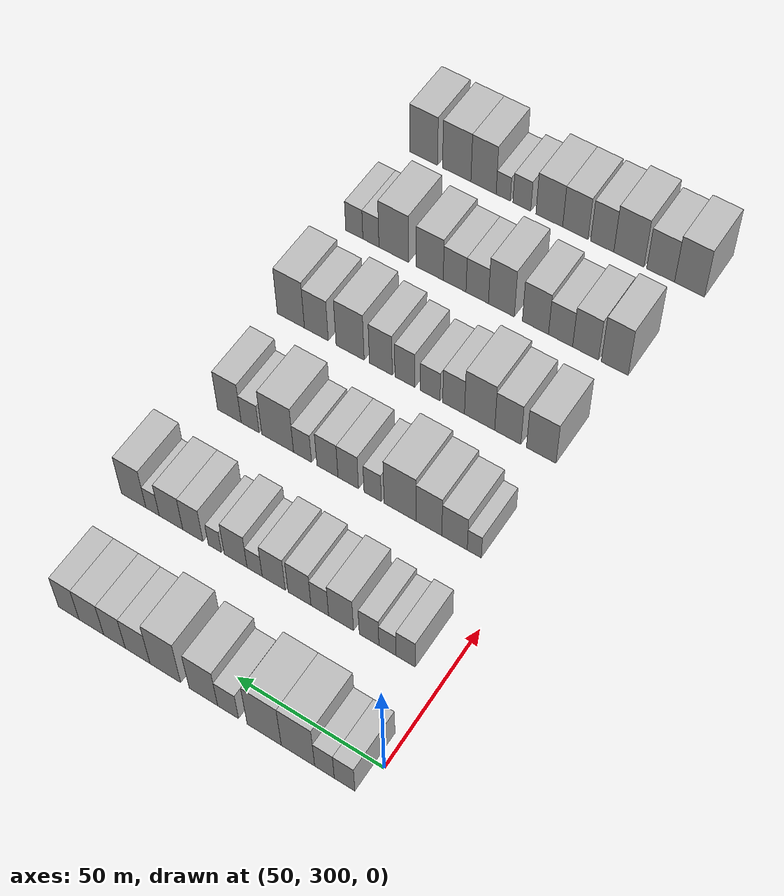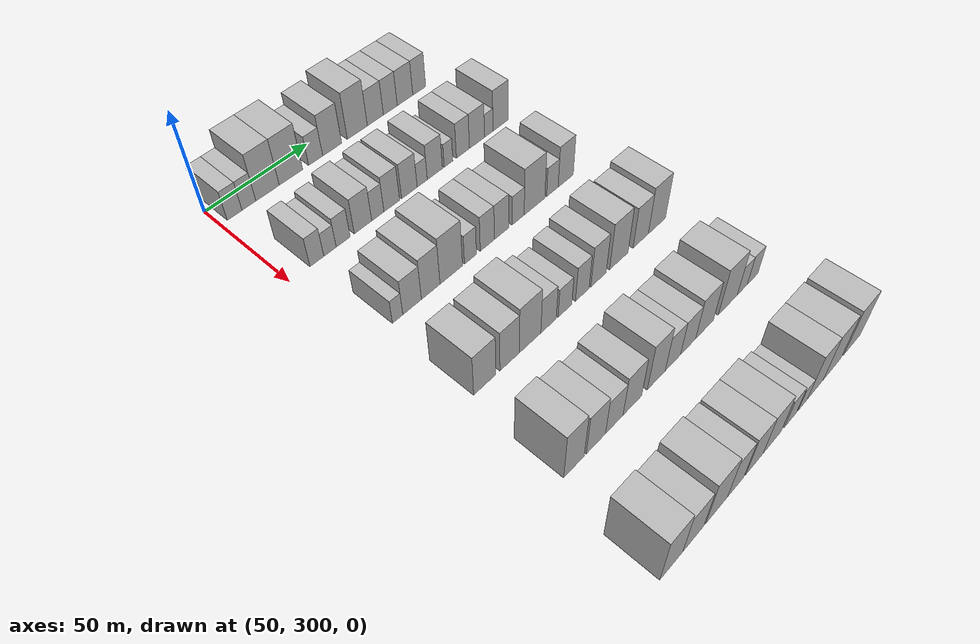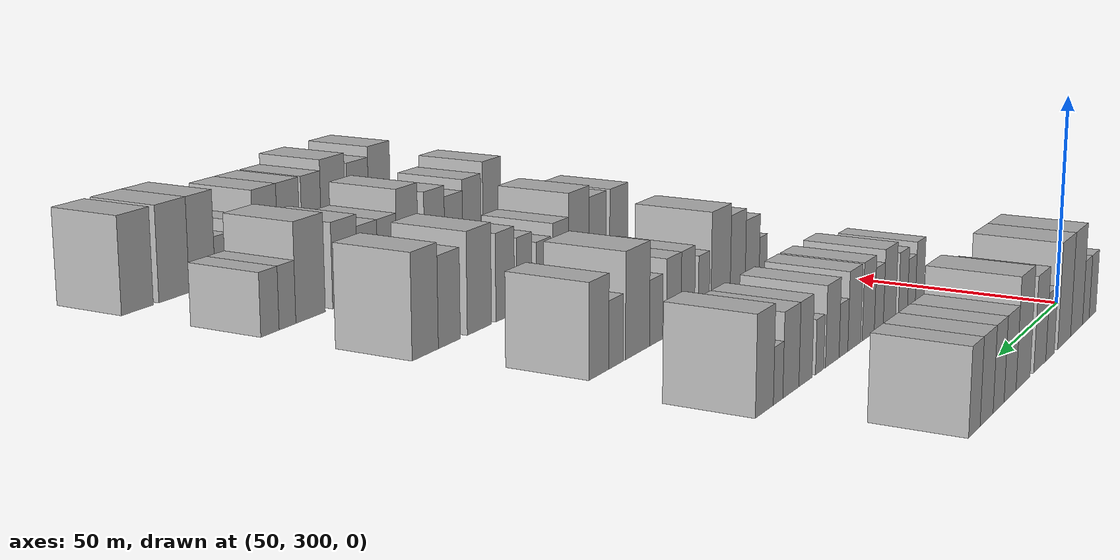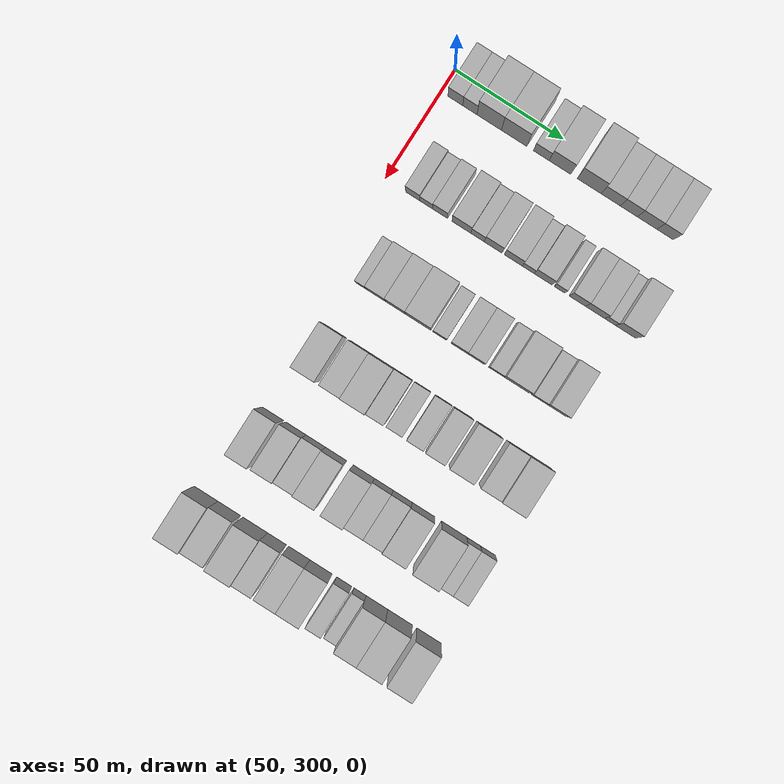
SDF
<sdf version="1.6">
 <world name="default">
  <model name="building_100">
   <static>1</static>
   <pose>50.0000 306.5376 0 0.000000 0.000000 0.000000</pose>
   <link name="link">
    <pose>0 0 7.50 0 0 0</pose>
    <collision name="collision"><geometry><box><size>20.0000 6.8069 15.0000</size></box></geometry></collision>
    <visual name="visual">
     <cast_shadows>0</cast_shadows>
     <geometry><box><size>20.0000 6.8069 15.0000</size></box></geometry>
     <material>
      <script>
       <uri>model://HANNAS_wall/materials/scripts</uri>
       <uri>model://HANNAS_wall/materials/textures</uri>
       <name>vrc/HANNAS_wall</name>
      </script>
     </material>
    </visual>
   </link>
  </model>
  <model name="building_101">
   <static>1</static>
   <pose>50.0000 313.2041 0 0.000000 0.000000 0.000000</pose>
   <link name="link">
    <pose>0 0 7.50 0 0 0</pose>
    <collision name="collision"><geometry><box><size>20.0000 6.5261 15.0000</size></box></geometry></collision>
    <visual name="visual">
     <cast_shadows>0</cast_shadows>
     <geometry><box><size>20.0000 6.5261 15.0000</size></box></geometry>
     <material>
      <script>
       <uri>model://HANNAS_wall/materials/scripts</uri>
       <uri>model://HANNAS_wall/materials/textures</uri>
       <name>vrc/HANNAS_wall</name>
      </script>
     </material>
    </visual>
   </link>
  </model>
  <model name="building_102">
   <static>1</static>
   <pose>50.0000 322.0785 0 0.000000 0.000000 0.000000</pose>
   <link name="link">
    <pose>0 0 12.00 0 0 0</pose>
    <collision name="collision"><geometry><box><size>20.0000 11.2226 24.0000</size></box></geometry></collision>
    <visual name="visual">
     <cast_shadows>0</cast_shadows>
     <geometry><box><size>20.0000 11.2226 24.0000</size></box></geometry>
     <material>
      <script>
       <uri>model://HANNAS_wall/materials/scripts</uri>
       <uri>model://HANNAS_wall/materials/textures</uri>
       <name>vrc/HANNAS_wall</name>
      </script>
     </material>
    </visual>
   </link>
  </model>
  <model name="building_103">
   <static>1</static>
   <pose>50.0000 333.5019 0 0.000000 0.000000 0.000000</pose>
   <link name="link">
    <pose>0 0 12.00 0 0 0</pose>
    <collision name="collision"><geometry><box><size>20.0000 11.6243 24.0000</size></box></geometry></collision>
    <visual name="visual">
     <cast_shadows>0</cast_shadows>
     <geometry><box><size>20.0000 11.6243 24.0000</size></box></geometry>
     <material>
      <script>
       <uri>model://HANNAS_wall/materials/scripts</uri>
       <uri>model://HANNAS_wall/materials/textures</uri>
       <name>vrc/HANNAS_wall</name>
      </script>
     </material>
    </visual>
   </link>
  </model>
  <model name="building_104">
   <static>1</static>
   <pose>50.0000 345.9176 0 0.000000 0.000000 0.000000</pose>
   <link name="link">
    <pose>0 0 7.50 0 0 0</pose>
    <collision name="collision"><geometry><box><size>20.0000 7.2070 15.0000</size></box></geometry></collision>
    <visual name="visual">
     <cast_shadows>0</cast_shadows>
     <geometry><box><size>20.0000 7.2070 15.0000</size></box></geometry>
     <material>
      <script>
       <uri>model://HANNAS_wall/materials/scripts</uri>
       <uri>model://HANNAS_wall/materials/textures</uri>
       <name>vrc/HANNAS_wall</name>
      </script>
     </material>
    </visual>
   </link>
  </model>
  <model name="building_105">
   <static>1</static>
   <pose>50.0000 354.4840 0 0.000000 0.000000 0.000000</pose>
   <link name="link">
    <pose>0 0 10.50 0 0 0</pose>
    <collision name="collision"><geometry><box><size>20.0000 9.9259 21.0000</size></box></geometry></collision>
    <visual name="visual">
     <cast_shadows>0</cast_shadows>
     <geometry><box><size>20.0000 9.9259 21.0000</size></box></geometry>
     <material>
      <script>
       <uri>model://HANNAS_wall/materials/scripts</uri>
       <uri>model://HANNAS_wall/materials/textures</uri>
       <name>vrc/HANNAS_wall</name>
      </script>
     </material>
    </visual>
   </link>
  </model>
  <model name="building_106">
   <static>1</static>
   <pose>50.0000 367.8768 0 0.000000 0.000000 0.000000</pose>
   <link name="link">
    <pose>0 0 12.00 0 0 0</pose>
    <collision name="collision"><geometry><box><size>20.0000 10.8597 24.0000</size></box></geometry></collision>
    <visual name="visual">
     <cast_shadows>0</cast_shadows>
     <geometry><box><size>20.0000 10.8597 24.0000</size></box></geometry>
     <material>
      <script>
       <uri>model://HANNAS_wall/materials/scripts</uri>
       <uri>model://HANNAS_wall/materials/textures</uri>
       <name>vrc/HANNAS_wall</name>
      </script>
     </material>
    </visual>
   </link>
  </model>
  <model name="building_107">
   <static>1</static>
   <pose>50.0000 377.7399 0 0.000000 0.000000 0.000000</pose>
   <link name="link">
    <pose>0 0 9.00 0 0 0</pose>
    <collision name="collision"><geometry><box><size>20.0000 8.8666 18.0000</size></box></geometry></collision>
    <visual name="visual">
     <cast_shadows>0</cast_shadows>
     <geometry><box><size>20.0000 8.8666 18.0000</size></box></geometry>
     <material>
      <script>
       <uri>model://HANNAS_wall/materials/scripts</uri>
       <uri>model://HANNAS_wall/materials/textures</uri>
       <name>vrc/HANNAS_wall</name>
      </script>
     </material>
    </visual>
   </link>
  </model>
  <model name="building_108">
   <static>1</static>
   <pose>50.0000 386.0869 0 0.000000 0.000000 0.000000</pose>
   <link name="link">
    <pose>0 0 9.00 0 0 0</pose>
    <collision name="collision"><geometry><box><size>20.0000 7.8273 18.0000</size></box></geometry></collision>
    <visual name="visual">
     <cast_shadows>0</cast_shadows>
     <geometry><box><size>20.0000 7.8273 18.0000</size></box></geometry>
     <material>
      <script>
       <uri>model://HANNAS_wall/materials/scripts</uri>
       <uri>model://HANNAS_wall/materials/textures</uri>
       <name>vrc/HANNAS_wall</name>
      </script>
     </material>
    </visual>
   </link>
  </model>
  <model name="building_109">
   <static>1</static>
   <pose>50.0000 394.4726 0 0.000000 0.000000 0.000000</pose>
   <link name="link">
    <pose>0 0 9.00 0 0 0</pose>
    <collision name="collision"><geometry><box><size>20.0000 8.9442 18.0000</size></box></geometry></collision>
    <visual name="visual">
     <cast_shadows>0</cast_shadows>
     <geometry><box><size>20.0000 8.9442 18.0000</size></box></geometry>
     <material>
      <script>
       <uri>model://HANNAS_wall/materials/scripts</uri>
       <uri>model://HANNAS_wall/materials/textures</uri>
       <name>vrc/HANNAS_wall</name>
      </script>
     </material>
    </visual>
   </link>
  </model>
  <model name="building_110">
   <static>1</static>
   <pose>50.0000 402.7370 0 0.000000 0.000000 0.000000</pose>
   <link name="link">
    <pose>0 0 9.00 0 0 0</pose>
    <collision name="collision"><geometry><box><size>20.0000 7.5845 18.0000</size></box></geometry></collision>
    <visual name="visual">
     <cast_shadows>0</cast_shadows>
     <geometry><box><size>20.0000 7.5845 18.0000</size></box></geometry>
     <material>
      <script>
       <uri>model://HANNAS_wall/materials/scripts</uri>
       <uri>model://HANNAS_wall/materials/textures</uri>
       <name>vrc/HANNAS_wall</name>
      </script>
     </material>
    </visual>
   </link>
  </model>
  <model name="building_247">
   <static>1</static>
   <pose>90.0000 312.5411 0 0.000000 0.000000 0.000000</pose>
   <link name="link">
    <pose>0 0 7.50 0 0 0</pose>
    <collision name="collision"><geometry><box><size>20.0000 6.5039 15.0000</size></box></geometry></collision>
    <visual name="visual">
     <cast_shadows>0</cast_shadows>
     <geometry><box><size>20.0000 6.5039 15.0000</size></box></geometry>
     <material>
      <script>
       <uri>model://HANNAS_wall/materials/scripts</uri>
       <uri>model://HANNAS_wall/materials/textures</uri>
       <name>vrc/HANNAS_wall</name>
      </script>
     </material>
    </visual>
   </link>
  </model>
  <model name="building_248">
   <static>1</static>
   <pose>90.0000 318.7344 0 0.000000 0.000000 0.000000</pose>
   <link name="link">
    <pose>0 0 6.00 0 0 0</pose>
    <collision name="collision"><geometry><box><size>20.0000 5.8826 12.0000</size></box></geometry></collision>
    <visual name="visual">
     <cast_shadows>0</cast_shadows>
     <geometry><box><size>20.0000 5.8826 12.0000</size></box></geometry>
     <material>
      <script>
       <uri>model://HANNAS_wall/materials/scripts</uri>
       <uri>model://HANNAS_wall/materials/textures</uri>
       <name>vrc/HANNAS_wall</name>
      </script>
     </material>
    </visual>
   </link>
  </model>
  <model name="building_249">
   <static>1</static>
   <pose>90.0000 325.0450 0 0.000000 0.000000 0.000000</pose>
   <link name="link">
    <pose>0 0 7.50 0 0 0</pose>
    <collision name="collision"><geometry><box><size>20.0000 6.7387 15.0000</size></box></geometry></collision>
    <visual name="visual">
     <cast_shadows>0</cast_shadows>
     <geometry><box><size>20.0000 6.7387 15.0000</size></box></geometry>
     <material>
      <script>
       <uri>model://HANNAS_wall/materials/scripts</uri>
       <uri>model://HANNAS_wall/materials/textures</uri>
       <name>vrc/HANNAS_wall</name>
      </script>
     </material>
    </visual>
   </link>
  </model>
  <model name="building_250">
   <static>1</static>
   <pose>90.0000 334.7540 0 0.000000 0.000000 0.000000</pose>
   <link name="link">
    <pose>0 0 9.00 0 0 0</pose>
    <collision name="collision"><geometry><box><size>20.0000 8.6794 18.0000</size></box></geometry></collision>
    <visual name="visual">
     <cast_shadows>0</cast_shadows>
     <geometry><box><size>20.0000 8.6794 18.0000</size></box></geometry>
     <material>
      <script>
       <uri>model://HANNAS_wall/materials/scripts</uri>
       <uri>model://HANNAS_wall/materials/textures</uri>
       <name>vrc/HANNAS_wall</name>
      </script>
     </material>
    </visual>
   </link>
  </model>
  <model name="building_251">
   <static>1</static>
   <pose>90.0000 342.1892 0 0.000000 0.000000 0.000000</pose>
   <link name="link">
    <pose>0 0 7.50 0 0 0</pose>
    <collision name="collision"><geometry><box><size>20.0000 6.1909 15.0000</size></box></geometry></collision>
    <visual name="visual">
     <cast_shadows>0</cast_shadows>
     <geometry><box><size>20.0000 6.1909 15.0000</size></box></geometry>
     <material>
      <script>
       <uri>model://HANNAS_wall/materials/scripts</uri>
       <uri>model://HANNAS_wall/materials/textures</uri>
       <name>vrc/HANNAS_wall</name>
      </script>
     </material>
    </visual>
   </link>
  </model>
  <model name="building_252">
   <static>1</static>
   <pose>90.0000 349.3246 0 0.000000 0.000000 0.000000</pose>
   <link name="link">
    <pose>0 0 9.00 0 0 0</pose>
    <collision name="collision"><geometry><box><size>20.0000 8.0799 18.0000</size></box></geometry></collision>
    <visual name="visual">
     <cast_shadows>0</cast_shadows>
     <geometry><box><size>20.0000 8.0799 18.0000</size></box></geometry>
     <material>
      <script>
       <uri>model://HANNAS_wall/materials/scripts</uri>
       <uri>model://HANNAS_wall/materials/textures</uri>
       <name>vrc/HANNAS_wall</name>
      </script>
     </material>
    </visual>
   </link>
  </model>
  <model name="building_253">
   <static>1</static>
   <pose>90.0000 358.4822 0 0.000000 0.000000 0.000000</pose>
   <link name="link">
    <pose>0 0 9.00 0 0 0</pose>
    <collision name="collision"><geometry><box><size>20.0000 8.2353 18.0000</size></box></geometry></collision>
    <visual name="visual">
     <cast_shadows>0</cast_shadows>
     <geometry><box><size>20.0000 8.2353 18.0000</size></box></geometry>
     <material>
      <script>
       <uri>model://HANNAS_wall/materials/scripts</uri>
       <uri>model://HANNAS_wall/materials/textures</uri>
       <name>vrc/HANNAS_wall</name>
      </script>
     </material>
    </visual>
   </link>
  </model>
  <model name="building_254">
   <static>1</static>
   <pose>90.0000 365.3271 0 0.000000 0.000000 0.000000</pose>
   <link name="link">
    <pose>0 0 6.00 0 0 0</pose>
    <collision name="collision"><geometry><box><size>20.0000 5.4544 12.0000</size></box></geometry></collision>
    <visual name="visual">
     <cast_shadows>0</cast_shadows>
     <geometry><box><size>20.0000 5.4544 12.0000</size></box></geometry>
     <material>
      <script>
       <uri>model://HANNAS_wall/materials/scripts</uri>
       <uri>model://HANNAS_wall/materials/textures</uri>
       <name>vrc/HANNAS_wall</name>
      </script>
     </material>
    </visual>
   </link>
  </model>
  <model name="building_255">
   <static>1</static>
   <pose>90.0000 372.1898 0 0.000000 0.000000 0.000000</pose>
   <link name="link">
    <pose>0 0 9.00 0 0 0</pose>
    <collision name="collision"><geometry><box><size>20.0000 8.2711 18.0000</size></box></geometry></collision>
    <visual name="visual">
     <cast_shadows>0</cast_shadows>
     <geometry><box><size>20.0000 8.2711 18.0000</size></box></geometry>
     <material>
      <script>
       <uri>model://HANNAS_wall/materials/scripts</uri>
       <uri>model://HANNAS_wall/materials/textures</uri>
       <name>vrc/HANNAS_wall</name>
      </script>
     </material>
    </visual>
   </link>
  </model>
  <model name="building_256">
   <static>1</static>
   <pose>90.0000 379.7319 0 0.000000 0.000000 0.000000</pose>
   <link name="link">
    <pose>0 0 6.00 0 0 0</pose>
    <collision name="collision"><geometry><box><size>20.0000 4.8130 12.0000</size></box></geometry></collision>
    <visual name="visual">
     <cast_shadows>0</cast_shadows>
     <geometry><box><size>20.0000 4.8130 12.0000</size></box></geometry>
     <material>
      <script>
       <uri>model://HANNAS_wall/materials/scripts</uri>
       <uri>model://HANNAS_wall/materials/textures</uri>
       <name>vrc/HANNAS_wall</name>
      </script>
     </material>
    </visual>
   </link>
  </model>
  <model name="building_257">
   <static>1</static>
   <pose>90.0000 387.8607 0 0.000000 0.000000 0.000000</pose>
   <link name="link">
    <pose>0 0 9.00 0 0 0</pose>
    <collision name="collision"><geometry><box><size>20.0000 7.4447 18.0000</size></box></geometry></collision>
    <visual name="visual">
     <cast_shadows>0</cast_shadows>
     <geometry><box><size>20.0000 7.4447 18.0000</size></box></geometry>
     <material>
      <script>
       <uri>model://HANNAS_wall/materials/scripts</uri>
       <uri>model://HANNAS_wall/materials/textures</uri>
       <name>vrc/HANNAS_wall</name>
      </script>
     </material>
    </visual>
   </link>
  </model>
  <model name="building_258">
   <static>1</static>
   <pose>90.0000 395.9584 0 0.000000 0.000000 0.000000</pose>
   <link name="link">
    <pose>0 0 9.00 0 0 0</pose>
    <collision name="collision"><geometry><box><size>20.0000 8.7507 18.0000</size></box></geometry></collision>
    <visual name="visual">
     <cast_shadows>0</cast_shadows>
     <geometry><box><size>20.0000 8.7507 18.0000</size></box></geometry>
     <material>
      <script>
       <uri>model://HANNAS_wall/materials/scripts</uri>
       <uri>model://HANNAS_wall/materials/textures</uri>
       <name>vrc/HANNAS_wall</name>
      </script>
     </material>
    </visual>
   </link>
  </model>
  <model name="building_259">
   <static>1</static>
   <pose>90.0000 402.8392 0 0.000000 0.000000 0.000000</pose>
   <link name="link">
    <pose>0 0 6.00 0 0 0</pose>
    <collision name="collision"><geometry><box><size>20.0000 5.0107 12.0000</size></box></geometry></collision>
    <visual name="visual">
     <cast_shadows>0</cast_shadows>
     <geometry><box><size>20.0000 5.0107 12.0000</size></box></geometry>
     <material>
      <script>
       <uri>model://HANNAS_wall/materials/scripts</uri>
       <uri>model://HANNAS_wall/materials/textures</uri>
       <name>vrc/HANNAS_wall</name>
      </script>
     </material>
    </visual>
   </link>
  </model>
  <model name="building_260">
   <static>1</static>
   <pose>90.0000 409.9484 0 0.000000 0.000000 0.000000</pose>
   <link name="link">
    <pose>0 0 10.50 0 0 0</pose>
    <collision name="collision"><geometry><box><size>20.0000 9.2077 21.0000</size></box></geometry></collision>
    <visual name="visual">
     <cast_shadows>0</cast_shadows>
     <geometry><box><size>20.0000 9.2077 21.0000</size></box></geometry>
     <material>
      <script>
       <uri>model://HANNAS_wall/materials/scripts</uri>
       <uri>model://HANNAS_wall/materials/textures</uri>
       <name>vrc/HANNAS_wall</name>
      </script>
     </material>
    </visual>
   </link>
  </model>
  <model name="building_380">
   <static>1</static>
   <pose>130.0000 314.3895 0 0.000000 0.000000 0.000000</pose>
   <link name="link">
    <pose>0 0 6.00 0 0 0</pose>
    <collision name="collision"><geometry><box><size>20.0000 4.8801 12.0000</size></box></geometry></collision>
    <visual name="visual">
     <cast_shadows>0</cast_shadows>
     <geometry><box><size>20.0000 4.8801 12.0000</size></box></geometry>
     <material>
      <script>
       <uri>model://HANNAS_wall/materials/scripts</uri>
       <uri>model://HANNAS_wall/materials/textures</uri>
       <name>vrc/HANNAS_wall</name>
      </script>
     </material>
    </visual>
   </link>
  </model>
  <model name="building_381">
   <static>1</static>
   <pose>130.0000 321.2710 0 0.000000 0.000000 0.000000</pose>
   <link name="link">
    <pose>0 0 9.00 0 0 0</pose>
    <collision name="collision"><geometry><box><size>20.0000 8.8830 18.0000</size></box></geometry></collision>
    <visual name="visual">
     <cast_shadows>0</cast_shadows>
     <geometry><box><size>20.0000 8.8830 18.0000</size></box></geometry>
     <material>
      <script>
       <uri>model://HANNAS_wall/materials/scripts</uri>
       <uri>model://HANNAS_wall/materials/textures</uri>
       <name>vrc/HANNAS_wall</name>
      </script>
     </material>
    </visual>
   </link>
  </model>
  <model name="building_382">
   <static>1</static>
   <pose>130.0000 330.2864 0 0.000000 0.000000 0.000000</pose>
   <link name="link">
    <pose>0 0 10.50 0 0 0</pose>
    <collision name="collision"><geometry><box><size>20.0000 9.1477 21.0000</size></box></geometry></collision>
    <visual name="visual">
     <cast_shadows>0</cast_shadows>
     <geometry><box><size>20.0000 9.1477 21.0000</size></box></geometry>
     <material>
      <script>
       <uri>model://HANNAS_wall/materials/scripts</uri>
       <uri>model://HANNAS_wall/materials/textures</uri>
       <name>vrc/HANNAS_wall</name>
      </script>
     </material>
    </visual>
   </link>
  </model>
  <model name="building_383">
   <static>1</static>
   <pose>130.0000 340.5444 0 0.000000 0.000000 0.000000</pose>
   <link name="link">
    <pose>0 0 12.00 0 0 0</pose>
    <collision name="collision"><geometry><box><size>20.0000 11.3683 24.0000</size></box></geometry></collision>
    <visual name="visual">
     <cast_shadows>0</cast_shadows>
     <geometry><box><size>20.0000 11.3683 24.0000</size></box></geometry>
     <material>
      <script>
       <uri>model://HANNAS_wall/materials/scripts</uri>
       <uri>model://HANNAS_wall/materials/textures</uri>
       <name>vrc/HANNAS_wall</name>
      </script>
     </material>
    </visual>
   </link>
  </model>
  <model name="building_384">
   <static>1</static>
   <pose>130.0000 350.3355 0 0.000000 0.000000 0.000000</pose>
   <link name="link">
    <pose>0 0 7.50 0 0 0</pose>
    <collision name="collision"><geometry><box><size>20.0000 6.2139 15.0000</size></box></geometry></collision>
    <visual name="visual">
     <cast_shadows>0</cast_shadows>
     <geometry><box><size>20.0000 6.2139 15.0000</size></box></geometry>
     <material>
      <script>
       <uri>model://HANNAS_wall/materials/scripts</uri>
       <uri>model://HANNAS_wall/materials/textures</uri>
       <name>vrc/HANNAS_wall</name>
      </script>
     </material>
    </visual>
   </link>
  </model>
  <model name="building_385">
   <static>1</static>
   <pose>130.0000 359.1834 0 0.000000 0.000000 0.000000</pose>
   <link name="link">
    <pose>0 0 9.00 0 0 0</pose>
    <collision name="collision"><geometry><box><size>20.0000 7.4818 18.0000</size></box></geometry></collision>
    <visual name="visual">
     <cast_shadows>0</cast_shadows>
     <geometry><box><size>20.0000 7.4818 18.0000</size></box></geometry>
     <material>
      <script>
       <uri>model://HANNAS_wall/materials/scripts</uri>
       <uri>model://HANNAS_wall/materials/textures</uri>
       <name>vrc/HANNAS_wall</name>
      </script>
     </material>
    </visual>
   </link>
  </model>
  <model name="building_386">
   <static>1</static>
   <pose>130.0000 366.7861 0 0.000000 0.000000 0.000000</pose>
   <link name="link">
    <pose>0 0 9.00 0 0 0</pose>
    <collision name="collision"><geometry><box><size>20.0000 7.7238 18.0000</size></box></geometry></collision>
    <visual name="visual">
     <cast_shadows>0</cast_shadows>
     <geometry><box><size>20.0000 7.7238 18.0000</size></box></geometry>
     <material>
      <script>
       <uri>model://HANNAS_wall/materials/scripts</uri>
       <uri>model://HANNAS_wall/materials/textures</uri>
       <name>vrc/HANNAS_wall</name>
      </script>
     </material>
    </visual>
   </link>
  </model>
  <model name="building_387">
   <static>1</static>
   <pose>130.0000 375.9779 0 0.000000 0.000000 0.000000</pose>
   <link name="link">
    <pose>0 0 7.50 0 0 0</pose>
    <collision name="collision"><geometry><box><size>20.0000 6.6596 15.0000</size></box></geometry></collision>
    <visual name="visual">
     <cast_shadows>0</cast_shadows>
     <geometry><box><size>20.0000 6.6596 15.0000</size></box></geometry>
     <material>
      <script>
       <uri>model://HANNAS_wall/materials/scripts</uri>
       <uri>model://HANNAS_wall/materials/textures</uri>
       <name>vrc/HANNAS_wall</name>
      </script>
     </material>
    </visual>
   </link>
  </model>
  <model name="building_388">
   <static>1</static>
   <pose>130.0000 385.2452 0 0.000000 0.000000 0.000000</pose>
   <link name="link">
    <pose>0 0 12.00 0 0 0</pose>
    <collision name="collision"><geometry><box><size>20.0000 11.8752 24.0000</size></box></geometry></collision>
    <visual name="visual">
     <cast_shadows>0</cast_shadows>
     <geometry><box><size>20.0000 11.8752 24.0000</size></box></geometry>
     <material>
      <script>
       <uri>model://HANNAS_wall/materials/scripts</uri>
       <uri>model://HANNAS_wall/materials/textures</uri>
       <name>vrc/HANNAS_wall</name>
      </script>
     </material>
    </visual>
   </link>
  </model>
  <model name="building_389">
   <static>1</static>
   <pose>130.0000 395.5736 0 0.000000 0.000000 0.000000</pose>
   <link name="link">
    <pose>0 0 7.50 0 0 0</pose>
    <collision name="collision"><geometry><box><size>20.0000 6.7816 15.0000</size></box></geometry></collision>
    <visual name="visual">
     <cast_shadows>0</cast_shadows>
     <geometry><box><size>20.0000 6.7816 15.0000</size></box></geometry>
     <material>
      <script>
       <uri>model://HANNAS_wall/materials/scripts</uri>
       <uri>model://HANNAS_wall/materials/textures</uri>
       <name>vrc/HANNAS_wall</name>
      </script>
     </material>
    </visual>
   </link>
  </model>
  <model name="building_390">
   <static>1</static>
   <pose>130.0000 403.4716 0 0.000000 0.000000 0.000000</pose>
   <link name="link">
    <pose>0 0 10.50 0 0 0</pose>
    <collision name="collision"><geometry><box><size>20.0000 9.0143 21.0000</size></box></geometry></collision>
    <visual name="visual">
     <cast_shadows>0</cast_shadows>
     <geometry><box><size>20.0000 9.0143 21.0000</size></box></geometry>
     <material>
      <script>
       <uri>model://HANNAS_wall/materials/scripts</uri>
       <uri>model://HANNAS_wall/materials/textures</uri>
       <name>vrc/HANNAS_wall</name>
      </script>
     </material>
    </visual>
   </link>
  </model>
  <model name="building_518">
   <static>1</static>
   <pose>170.0000 315.1786 0 0.000000 0.000000 0.000000</pose>
   <link name="link">
    <pose>0 0 10.50 0 0 0</pose>
    <collision name="collision"><geometry><box><size>20.0000 10.4764 21.0000</size></box></geometry></collision>
    <visual name="visual">
     <cast_shadows>0</cast_shadows>
     <geometry><box><size>20.0000 10.4764 21.0000</size></box></geometry>
     <material>
      <script>
       <uri>model://HANNAS_wall/materials/scripts</uri>
       <uri>model://HANNAS_wall/materials/textures</uri>
       <name>vrc/HANNAS_wall</name>
      </script>
     </material>
    </visual>
   </link>
  </model>
  <model name="building_519">
   <static>1</static>
   <pose>170.0000 327.1107 0 0.000000 0.000000 0.000000</pose>
   <link name="link">
    <pose>0 0 10.50 0 0 0</pose>
    <collision name="collision"><geometry><box><size>20.0000 9.3878 21.0000</size></box></geometry></collision>
    <visual name="visual">
     <cast_shadows>0</cast_shadows>
     <geometry><box><size>20.0000 9.3878 21.0000</size></box></geometry>
     <material>
      <script>
       <uri>model://HANNAS_wall/materials/scripts</uri>
       <uri>model://HANNAS_wall/materials/textures</uri>
       <name>vrc/HANNAS_wall</name>
      </script>
     </material>
    </visual>
   </link>
  </model>
  <model name="building_520">
   <static>1</static>
   <pose>170.0000 337.2861 0 0.000000 0.000000 0.000000</pose>
   <link name="link">
    <pose>0 0 12.00 0 0 0</pose>
    <collision name="collision"><geometry><box><size>20.0000 10.9631 24.0000</size></box></geometry></collision>
    <visual name="visual">
     <cast_shadows>0</cast_shadows>
     <geometry><box><size>20.0000 10.9631 24.0000</size></box></geometry>
     <material>
      <script>
       <uri>model://HANNAS_wall/materials/scripts</uri>
       <uri>model://HANNAS_wall/materials/textures</uri>
       <name>vrc/HANNAS_wall</name>
      </script>
     </material>
    </visual>
   </link>
  </model>
  <model name="building_521">
   <static>1</static>
   <pose>170.0000 346.7545 0 0.000000 0.000000 0.000000</pose>
   <link name="link">
    <pose>0 0 9.00 0 0 0</pose>
    <collision name="collision"><geometry><box><size>20.0000 7.9737 18.0000</size></box></geometry></collision>
    <visual name="visual">
     <cast_shadows>0</cast_shadows>
     <geometry><box><size>20.0000 7.9737 18.0000</size></box></geometry>
     <material>
      <script>
       <uri>model://HANNAS_wall/materials/scripts</uri>
       <uri>model://HANNAS_wall/materials/textures</uri>
       <name>vrc/HANNAS_wall</name>
      </script>
     </material>
    </visual>
   </link>
  </model>
  <model name="building_522">
   <static>1</static>
   <pose>170.0000 355.3841 0 0.000000 0.000000 0.000000</pose>
   <link name="link">
    <pose>0 0 7.50 0 0 0</pose>
    <collision name="collision"><geometry><box><size>20.0000 7.2855 15.0000</size></box></geometry></collision>
    <visual name="visual">
     <cast_shadows>0</cast_shadows>
     <geometry><box><size>20.0000 7.2855 15.0000</size></box></geometry>
     <material>
      <script>
       <uri>model://HANNAS_wall/materials/scripts</uri>
       <uri>model://HANNAS_wall/materials/textures</uri>
       <name>vrc/HANNAS_wall</name>
      </script>
     </material>
    </visual>
   </link>
  </model>
  <model name="building_523">
   <static>1</static>
   <pose>170.0000 364.7437 0 0.000000 0.000000 0.000000</pose>
   <link name="link">
    <pose>0 0 9.00 0 0 0</pose>
    <collision name="collision"><geometry><box><size>20.0000 7.4338 18.0000</size></box></geometry></collision>
    <visual name="visual">
     <cast_shadows>0</cast_shadows>
     <geometry><box><size>20.0000 7.4338 18.0000</size></box></geometry>
     <material>
      <script>
       <uri>model://HANNAS_wall/materials/scripts</uri>
       <uri>model://HANNAS_wall/materials/textures</uri>
       <name>vrc/HANNAS_wall</name>
      </script>
     </material>
    </visual>
   </link>
  </model>
  <model name="building_524">
   <static>1</static>
   <pose>170.0000 373.7536 0 0.000000 0.000000 0.000000</pose>
   <link name="link">
    <pose>0 0 10.50 0 0 0</pose>
    <collision name="collision"><geometry><box><size>20.0000 8.5860 21.0000</size></box></geometry></collision>
    <visual name="visual">
     <cast_shadows>0</cast_shadows>
     <geometry><box><size>20.0000 8.5860 21.0000</size></box></geometry>
     <material>
      <script>
       <uri>model://HANNAS_wall/materials/scripts</uri>
       <uri>model://HANNAS_wall/materials/textures</uri>
       <name>vrc/HANNAS_wall</name>
      </script>
     </material>
    </visual>
   </link>
  </model>
  <model name="building_525">
   <static>1</static>
   <pose>170.0000 385.3958 0 0.000000 0.000000 0.000000</pose>
   <link name="link">
    <pose>0 0 12.00 0 0 0</pose>
    <collision name="collision"><geometry><box><size>20.0000 10.6984 24.0000</size></box></geometry></collision>
    <visual name="visual">
     <cast_shadows>0</cast_shadows>
     <geometry><box><size>20.0000 10.6984 24.0000</size></box></geometry>
     <material>
      <script>
       <uri>model://HANNAS_wall/materials/scripts</uri>
       <uri>model://HANNAS_wall/materials/textures</uri>
       <name>vrc/HANNAS_wall</name>
      </script>
     </material>
    </visual>
   </link>
  </model>
  <model name="building_526">
   <static>1</static>
   <pose>170.0000 398.3454 0 0.000000 0.000000 0.000000</pose>
   <link name="link">
    <pose>0 0 10.50 0 0 0</pose>
    <collision name="collision"><geometry><box><size>20.0000 9.2007 21.0000</size></box></geometry></collision>
    <visual name="visual">
     <cast_shadows>0</cast_shadows>
     <geometry><box><size>20.0000 9.2007 21.0000</size></box></geometry>
     <material>
      <script>
       <uri>model://HANNAS_wall/materials/scripts</uri>
       <uri>model://HANNAS_wall/materials/textures</uri>
       <name>vrc/HANNAS_wall</name>
      </script>
     </material>
    </visual>
   </link>
  </model>
  <model name="building_527">
   <static>1</static>
   <pose>170.0000 408.2252 0 0.000000 0.000000 0.000000</pose>
   <link name="link">
    <pose>0 0 12.00 0 0 0</pose>
    <collision name="collision"><geometry><box><size>20.0000 10.5589 24.0000</size></box></geometry></collision>
    <visual name="visual">
     <cast_shadows>0</cast_shadows>
     <geometry><box><size>20.0000 10.5589 24.0000</size></box></geometry>
     <material>
      <script>
       <uri>model://HANNAS_wall/materials/scripts</uri>
       <uri>model://HANNAS_wall/materials/textures</uri>
       <name>vrc/HANNAS_wall</name>
      </script>
     </material>
    </visual>
   </link>
  </model>
  <model name="building_646">
   <static>1</static>
   <pose>210.0000 312.0461 0 0.000000 0.000000 0.000000</pose>
   <link name="link">
    <pose>0 0 12.00 0 0 0</pose>
    <collision name="collision"><geometry><box><size>20.0000 9.7122 24.0000</size></box></geometry></collision>
    <visual name="visual">
     <cast_shadows>0</cast_shadows>
     <geometry><box><size>20.0000 9.7122 24.0000</size></box></geometry>
     <material>
      <script>
       <uri>model://HANNAS_wall/materials/scripts</uri>
       <uri>model://HANNAS_wall/materials/textures</uri>
       <name>vrc/HANNAS_wall</name>
      </script>
     </material>
    </visual>
   </link>
  </model>
  <model name="building_647">
   <static>1</static>
   <pose>210.0000 322.6206 0 0.000000 0.000000 0.000000</pose>
   <link name="link">
    <pose>0 0 10.50 0 0 0</pose>
    <collision name="collision"><geometry><box><size>20.0000 9.4367 21.0000</size></box></geometry></collision>
    <visual name="visual">
     <cast_shadows>0</cast_shadows>
     <geometry><box><size>20.0000 9.4367 21.0000</size></box></geometry>
     <material>
      <script>
       <uri>model://HANNAS_wall/materials/scripts</uri>
       <uri>model://HANNAS_wall/materials/textures</uri>
       <name>vrc/HANNAS_wall</name>
      </script>
     </material>
    </visual>
   </link>
  </model>
  <model name="building_648">
   <static>1</static>
   <pose>210.0000 331.7750 0 0.000000 0.000000 0.000000</pose>
   <link name="link">
    <pose>0 0 9.00 0 0 0</pose>
    <collision name="collision"><geometry><box><size>20.0000 8.8722 18.0000</size></box></geometry></collision>
    <visual name="visual">
     <cast_shadows>0</cast_shadows>
     <geometry><box><size>20.0000 8.8722 18.0000</size></box></geometry>
     <material>
      <script>
       <uri>model://HANNAS_wall/materials/scripts</uri>
       <uri>model://HANNAS_wall/materials/textures</uri>
       <name>vrc/HANNAS_wall</name>
      </script>
     </material>
    </visual>
   </link>
  </model>
  <model name="building_649">
   <static>1</static>
   <pose>210.0000 341.0639 0 0.000000 0.000000 0.000000</pose>
   <link name="link">
    <pose>0 0 10.50 0 0 0</pose>
    <collision name="collision"><geometry><box><size>20.0000 9.7055 21.0000</size></box></geometry></collision>
    <visual name="visual">
     <cast_shadows>0</cast_shadows>
     <geometry><box><size>20.0000 9.7055 21.0000</size></box></geometry>
     <material>
      <script>
       <uri>model://HANNAS_wall/materials/scripts</uri>
       <uri>model://HANNAS_wall/materials/textures</uri>
       <name>vrc/HANNAS_wall</name>
      </script>
     </material>
    </visual>
   </link>
  </model>
  <model name="building_650">
   <static>1</static>
   <pose>210.0000 353.7854 0 0.000000 0.000000 0.000000</pose>
   <link name="link">
    <pose>0 0 12.00 0 0 0</pose>
    <collision name="collision"><geometry><box><size>20.0000 9.7375 24.0000</size></box></geometry></collision>
    <visual name="visual">
     <cast_shadows>0</cast_shadows>
     <geometry><box><size>20.0000 9.7375 24.0000</size></box></geometry>
     <material>
      <script>
       <uri>model://HANNAS_wall/materials/scripts</uri>
       <uri>model://HANNAS_wall/materials/textures</uri>
       <name>vrc/HANNAS_wall</name>
      </script>
     </material>
    </visual>
   </link>
  </model>
  <model name="building_651">
   <static>1</static>
   <pose>210.0000 362.9078 0 0.000000 0.000000 0.000000</pose>
   <link name="link">
    <pose>0 0 9.00 0 0 0</pose>
    <collision name="collision"><geometry><box><size>20.0000 8.5073 18.0000</size></box></geometry></collision>
    <visual name="visual">
     <cast_shadows>0</cast_shadows>
     <geometry><box><size>20.0000 8.5073 18.0000</size></box></geometry>
     <material>
      <script>
       <uri>model://HANNAS_wall/materials/scripts</uri>
       <uri>model://HANNAS_wall/materials/textures</uri>
       <name>vrc/HANNAS_wall</name>
      </script>
     </material>
    </visual>
   </link>
  </model>
  <model name="building_652">
   <static>1</static>
   <pose>210.0000 371.4982 0 0.000000 0.000000 0.000000</pose>
   <link name="link">
    <pose>0 0 9.00 0 0 0</pose>
    <collision name="collision"><geometry><box><size>20.0000 8.6735 18.0000</size></box></geometry></collision>
    <visual name="visual">
     <cast_shadows>0</cast_shadows>
     <geometry><box><size>20.0000 8.6735 18.0000</size></box></geometry>
     <material>
      <script>
       <uri>model://HANNAS_wall/materials/scripts</uri>
       <uri>model://HANNAS_wall/materials/textures</uri>
       <name>vrc/HANNAS_wall</name>
      </script>
     </material>
    </visual>
   </link>
  </model>
  <model name="building_653">
   <static>1</static>
   <pose>210.0000 381.0669 0 0.000000 0.000000 0.000000</pose>
   <link name="link">
    <pose>0 0 10.50 0 0 0</pose>
    <collision name="collision"><geometry><box><size>20.0000 10.4639 21.0000</size></box></geometry></collision>
    <visual name="visual">
     <cast_shadows>0</cast_shadows>
     <geometry><box><size>20.0000 10.4639 21.0000</size></box></geometry>
     <material>
      <script>
       <uri>model://HANNAS_wall/materials/scripts</uri>
       <uri>model://HANNAS_wall/materials/textures</uri>
       <name>vrc/HANNAS_wall</name>
      </script>
     </material>
    </visual>
   </link>
  </model>
  <model name="building_654">
   <static>1</static>
   <pose>210.0000 395.0880 0 0.000000 0.000000 0.000000</pose>
   <link name="link">
    <pose>0 0 12.00 0 0 0</pose>
    <collision name="collision"><geometry><box><size>20.0000 11.5782 24.0000</size></box></geometry></collision>
    <visual name="visual">
     <cast_shadows>0</cast_shadows>
     <geometry><box><size>20.0000 11.5782 24.0000</size></box></geometry>
     <material>
      <script>
       <uri>model://HANNAS_wall/materials/scripts</uri>
       <uri>model://HANNAS_wall/materials/textures</uri>
       <name>vrc/HANNAS_wall</name>
      </script>
     </material>
    </visual>
   </link>
  </model>
  <model name="building_655">
   <static>1</static>
   <pose>210.0000 404.0474 0 0.000000 0.000000 0.000000</pose>
   <link name="link">
    <pose>0 0 7.50 0 0 0</pose>
    <collision name="collision"><geometry><box><size>20.0000 6.3406 15.0000</size></box></geometry></collision>
    <visual name="visual">
     <cast_shadows>0</cast_shadows>
     <geometry><box><size>20.0000 6.3406 15.0000</size></box></geometry>
     <material>
      <script>
       <uri>model://HANNAS_wall/materials/scripts</uri>
       <uri>model://HANNAS_wall/materials/textures</uri>
       <name>vrc/HANNAS_wall</name>
      </script>
     </material>
    </visual>
   </link>
  </model>
  <model name="building_656">
   <static>1</static>
   <pose>210.0000 410.6103 0 0.000000 0.000000 0.000000</pose>
   <link name="link">
    <pose>0 0 7.50 0 0 0</pose>
    <collision name="collision"><geometry><box><size>20.0000 6.7852 15.0000</size></box></geometry></collision>
    <visual name="visual">
     <cast_shadows>0</cast_shadows>
     <geometry><box><size>20.0000 6.7852 15.0000</size></box></geometry>
     <material>
      <script>
       <uri>model://HANNAS_wall/materials/scripts</uri>
       <uri>model://HANNAS_wall/materials/textures</uri>
       <name>vrc/HANNAS_wall</name>
      </script>
     </material>
    </visual>
   </link>
  </model>
  <model name="building_784">
   <static>1</static>
   <pose>250.0000 306.8667 0 0.000000 0.000000 0.000000</pose>
   <link name="link">
    <pose>0 0 12.00 0 0 0</pose>
    <collision name="collision"><geometry><box><size>20.0000 10.9661 24.0000</size></box></geometry></collision>
    <visual name="visual">
     <cast_shadows>0</cast_shadows>
     <geometry><box><size>20.0000 10.9661 24.0000</size></box></geometry>
     <material>
      <script>
       <uri>model://HANNAS_wall/materials/scripts</uri>
       <uri>model://HANNAS_wall/materials/textures</uri>
       <name>vrc/HANNAS_wall</name>
      </script>
     </material>
    </visual>
   </link>
  </model>
  <model name="building_785">
   <static>1</static>
   <pose>250.0000 317.5060 0 0.000000 0.000000 0.000000</pose>
   <link name="link">
    <pose>0 0 10.50 0 0 0</pose>
    <collision name="collision"><geometry><box><size>20.0000 10.3125 21.0000</size></box></geometry></collision>
    <visual name="visual">
     <cast_shadows>0</cast_shadows>
     <geometry><box><size>20.0000 10.3125 21.0000</size></box></geometry>
     <material>
      <script>
       <uri>model://HANNAS_wall/materials/scripts</uri>
       <uri>model://HANNAS_wall/materials/textures</uri>
       <name>vrc/HANNAS_wall</name>
      </script>
     </material>
    </visual>
   </link>
  </model>
  <model name="building_786">
   <static>1</static>
   <pose>250.0000 329.3119 0 0.000000 0.000000 0.000000</pose>
   <link name="link">
    <pose>0 0 12.00 0 0 0</pose>
    <collision name="collision"><geometry><box><size>20.0000 11.2992 24.0000</size></box></geometry></collision>
    <visual name="visual">
     <cast_shadows>0</cast_shadows>
     <geometry><box><size>20.0000 11.2992 24.0000</size></box></geometry>
     <material>
      <script>
       <uri>model://HANNAS_wall/materials/scripts</uri>
       <uri>model://HANNAS_wall/materials/textures</uri>
       <name>vrc/HANNAS_wall</name>
      </script>
     </material>
    </visual>
   </link>
  </model>
  <model name="building_787">
   <static>1</static>
   <pose>250.0000 339.3288 0 0.000000 0.000000 0.000000</pose>
   <link name="link">
    <pose>0 0 10.50 0 0 0</pose>
    <collision name="collision"><geometry><box><size>20.0000 8.7347 21.0000</size></box></geometry></collision>
    <visual name="visual">
     <cast_shadows>0</cast_shadows>
     <geometry><box><size>20.0000 8.7347 21.0000</size></box></geometry>
     <material>
      <script>
       <uri>model://HANNAS_wall/materials/scripts</uri>
       <uri>model://HANNAS_wall/materials/textures</uri>
       <name>vrc/HANNAS_wall</name>
      </script>
     </material>
    </visual>
   </link>
  </model>
  <model name="building_788">
   <static>1</static>
   <pose>250.0000 349.5436 0 0.000000 0.000000 0.000000</pose>
   <link name="link">
    <pose>0 0 10.50 0 0 0</pose>
    <collision name="collision"><geometry><box><size>20.0000 9.6948 21.0000</size></box></geometry></collision>
    <visual name="visual">
     <cast_shadows>0</cast_shadows>
     <geometry><box><size>20.0000 9.6948 21.0000</size></box></geometry>
     <material>
      <script>
       <uri>model://HANNAS_wall/materials/scripts</uri>
       <uri>model://HANNAS_wall/materials/textures</uri>
       <name>vrc/HANNAS_wall</name>
      </script>
     </material>
    </visual>
   </link>
  </model>
  <model name="building_789">
   <static>1</static>
   <pose>250.0000 359.5324 0 0.000000 0.000000 0.000000</pose>
   <link name="link">
    <pose>0 0 10.50 0 0 0</pose>
    <collision name="collision"><geometry><box><size>20.0000 10.2827 21.0000</size></box></geometry></collision>
    <visual name="visual">
     <cast_shadows>0</cast_shadows>
     <geometry><box><size>20.0000 10.2827 21.0000</size></box></geometry>
     <material>
      <script>
       <uri>model://HANNAS_wall/materials/scripts</uri>
       <uri>model://HANNAS_wall/materials/textures</uri>
       <name>vrc/HANNAS_wall</name>
      </script>
     </material>
    </visual>
   </link>
  </model>
  <model name="building_790">
   <static>1</static>
   <pose>250.0000 370.1635 0 0.000000 0.000000 0.000000</pose>
   <link name="link">
    <pose>0 0 7.50 0 0 0</pose>
    <collision name="collision"><geometry><box><size>20.0000 6.9795 15.0000</size></box></geometry></collision>
    <visual name="visual">
     <cast_shadows>0</cast_shadows>
     <geometry><box><size>20.0000 6.9795 15.0000</size></box></geometry>
     <material>
      <script>
       <uri>model://HANNAS_wall/materials/scripts</uri>
       <uri>model://HANNAS_wall/materials/textures</uri>
       <name>vrc/HANNAS_wall</name>
      </script>
     </material>
    </visual>
   </link>
  </model>
  <model name="building_791">
   <static>1</static>
   <pose>250.0000 377.4321 0 0.000000 0.000000 0.000000</pose>
   <link name="link">
    <pose>0 0 6.00 0 0 0</pose>
    <collision name="collision"><geometry><box><size>20.0000 5.5577 12.0000</size></box></geometry></collision>
    <visual name="visual">
     <cast_shadows>0</cast_shadows>
     <geometry><box><size>20.0000 5.5577 12.0000</size></box></geometry>
     <material>
      <script>
       <uri>model://HANNAS_wall/materials/scripts</uri>
       <uri>model://HANNAS_wall/materials/textures</uri>
       <name>vrc/HANNAS_wall</name>
      </script>
     </material>
    </visual>
   </link>
  </model>
  <model name="building_792">
   <static>1</static>
   <pose>250.0000 385.1864 0 0.000000 0.000000 0.000000</pose>
   <link name="link">
    <pose>0 0 12.00 0 0 0</pose>
    <collision name="collision"><geometry><box><size>20.0000 9.9509 24.0000</size></box></geometry></collision>
    <visual name="visual">
     <cast_shadows>0</cast_shadows>
     <geometry><box><size>20.0000 9.9509 24.0000</size></box></geometry>
     <material>
      <script>
       <uri>model://HANNAS_wall/materials/scripts</uri>
       <uri>model://HANNAS_wall/materials/textures</uri>
       <name>vrc/HANNAS_wall</name>
      </script>
     </material>
    </visual>
   </link>
  </model>
  <model name="building_793">
   <static>1</static>
   <pose>250.0000 395.8119 0 0.000000 0.000000 0.000000</pose>
   <link name="link">
    <pose>0 0 12.00 0 0 0</pose>
    <collision name="collision"><geometry><box><size>20.0000 11.3002 24.0000</size></box></geometry></collision>
    <visual name="visual">
     <cast_shadows>0</cast_shadows>
     <geometry><box><size>20.0000 11.3002 24.0000</size></box></geometry>
     <material>
      <script>
       <uri>model://HANNAS_wall/materials/scripts</uri>
       <uri>model://HANNAS_wall/materials/textures</uri>
       <name>vrc/HANNAS_wall</name>
      </script>
     </material>
    </visual>
   </link>
  </model>
  <model name="building_794">
   <static>1</static>
   <pose>250.0000 409.0723 0 0.000000 0.000000 0.000000</pose>
   <link name="link">
    <pose>0 0 12.00 0 0 0</pose>
    <collision name="collision"><geometry><box><size>20.0000 11.2207 24.0000</size></box></geometry></collision>
    <visual name="visual">
     <cast_shadows>0</cast_shadows>
     <geometry><box><size>20.0000 11.2207 24.0000</size></box></geometry>
     <material>
      <script>
       <uri>model://HANNAS_wall/materials/scripts</uri>
       <uri>model://HANNAS_wall/materials/textures</uri>
       <name>vrc/HANNAS_wall</name>
      </script>
     </material>
    </visual>
   </link>
  </model>
 </world>
</sdf>
